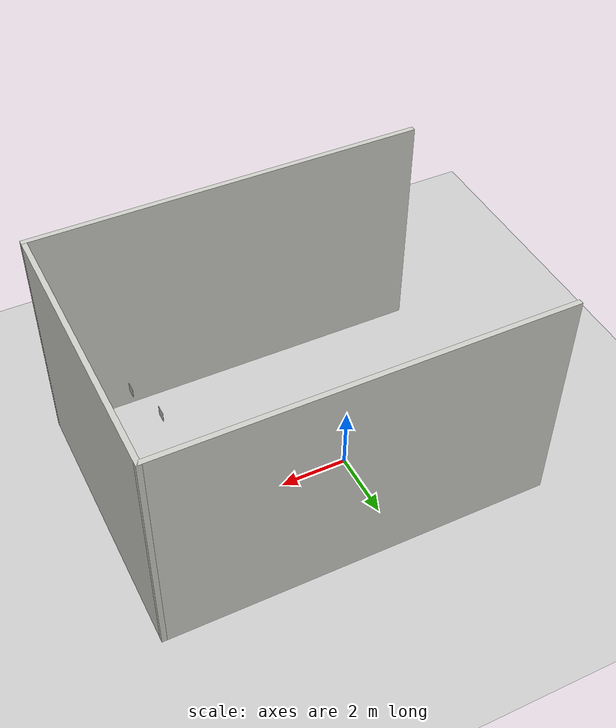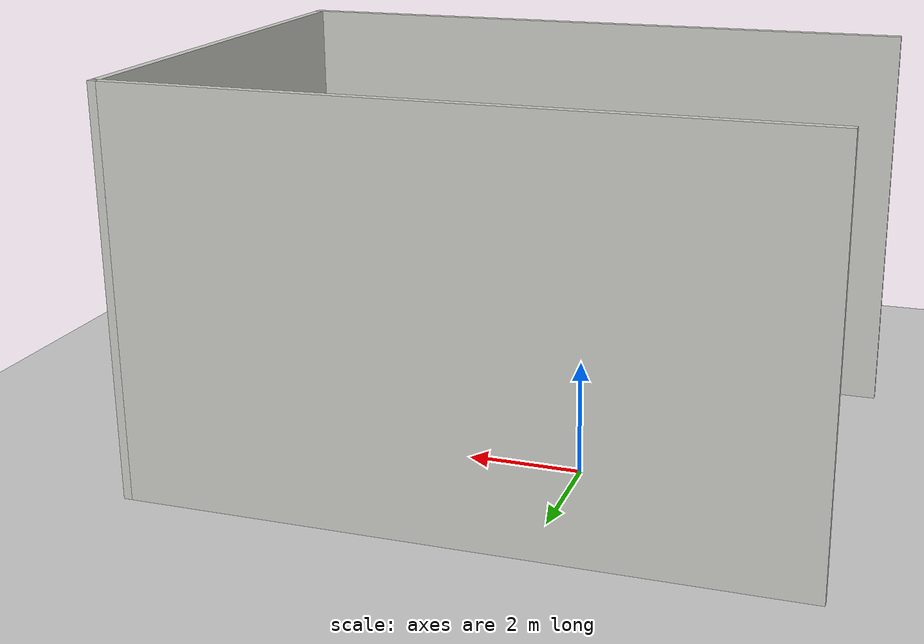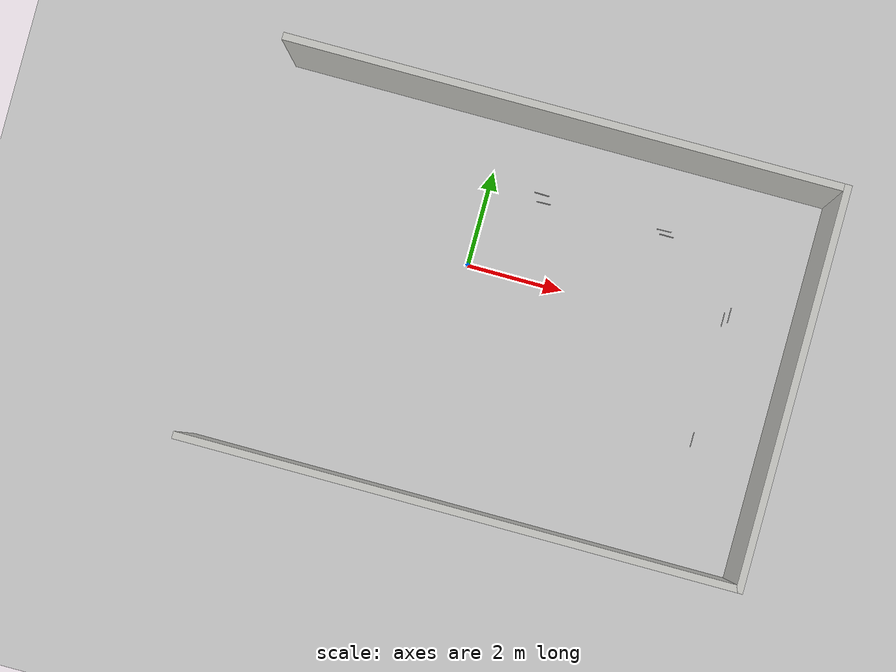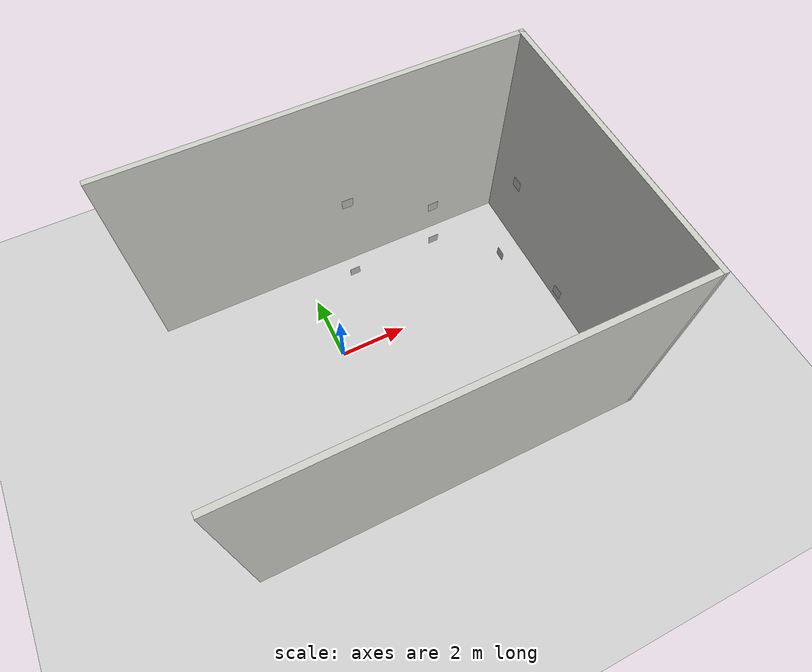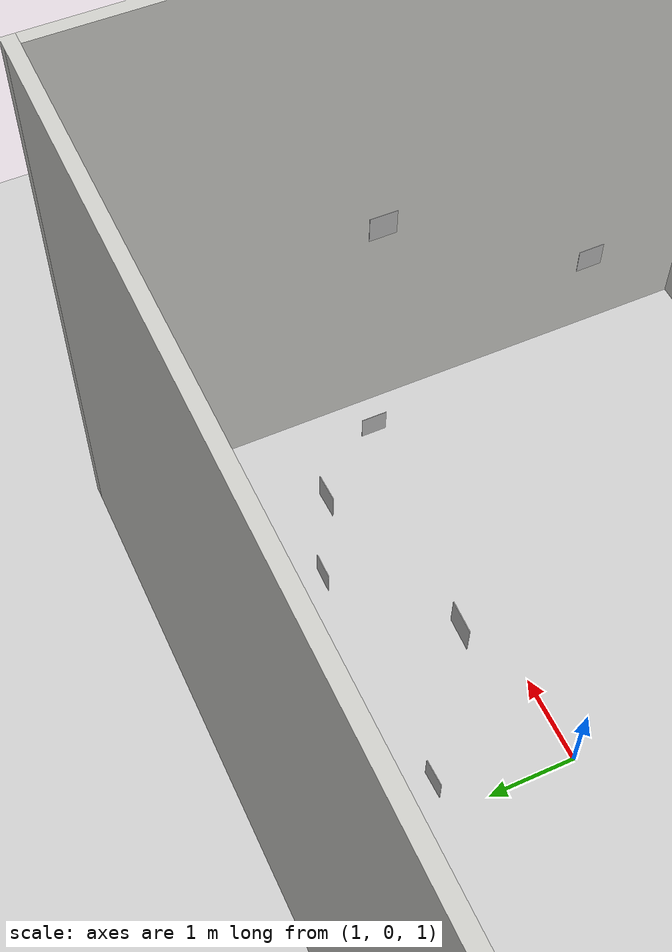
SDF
<sdf version="1.6">
 <world name="default">
  <scene><ambient>0.5 0.5 0.5 1</ambient><background>0.5 0.5 0.5 1</background><shadows>0</shadows></scene>
  <physics name="default_physics" default="0" type="ode">
   <ode>
    <solver>
     <type>quick</type>
     <iters>10</iters>
     <sor>1.3</sor>
     <use_dynamic_moi_rescaling>0</use_dynamic_moi_rescaling>
    </solver>
    <constraints>
     <cfm>0</cfm>
     <erp>0.2</erp>
     <contact_max_correcting_vel>100</contact_max_correcting_vel>
     <contact_surface_layer>0.001</contact_surface_layer>
    </constraints>
   </ode>
   <real_time_update_rate>1000</real_time_update_rate>
   <max_step_size>0.001</max_step_size>
   <real_time_factor>1</real_time_factor>
  </physics>
  <model name="ground_plane">
   <static>1</static>
   <link name="link">
    <collision name="collision">
     <geometry><plane><normal>0 0 1</normal><size>100 100</size></plane></geometry>
     <surface>
      <contact><collide_bitmask>65535</collide_bitmask></contact>
      <friction><ode><mu>100</mu><mu2>50</mu2></ode></friction>
     </surface>
    </collision>
    <visual name="visual">
     <cast_shadows>0</cast_shadows>
     <geometry><plane><normal>0 0 1</normal><size>100 100</size></plane></geometry>
     <material>
      <script><uri>file://media/materials/scripts/gazebo.material</uri><name>Gazebo/Grey</name></script>
     </material>
    </visual>
   </link>
  </model>
  <light name="my_light" type="directional">
   <pose>0 0 30 0 -0 0</pose>
   <diffuse>0.5 0.5 0.5 1</diffuse>
   <specular>0.1 0.1 0.1 1</specular>
   <attenuation><range>200</range></attenuation>
   <direction>0 0 -1</direction>
   <cast_shadows>0</cast_shadows>
  </light>
  <gravity>0 0 -9.8</gravity>
  <magnetic_field>6e-06 2.3e-05 -4.2e-05</magnetic_field>
  <atmosphere type="adiabatic"/>
  <spherical_coordinates>
   <surface_model>EARTH_WGS84</surface_model>
   <latitude_deg>0</latitude_deg>
   <longitude_deg>0</longitude_deg>
   <elevation>0</elevation>
   <heading_deg>0</heading_deg>
  </spherical_coordinates>
  <model name="wall_Final">
   <pose>1.18705 -0.90001 0 0 -0 0</pose>
   <link name="Wall_34">
    <collision name="Wall_34_Collision">
     <geometry><box><size>11.526 0.15 7</size></box></geometry>
     <pose>0 0 3.5 0 -0 0</pose>
    </collision>
    <visual name="Wall_34_Visual">
     <pose>0 0 3.5 0 -0 0</pose>
     <geometry><box><size>11.526 0.15 7</size></box></geometry>
     <material>
      <script><uri>file://media/materials/scripts/gazebo.material</uri><name>Gazebo/CeilingTiled</name></script>
      <ambient>0.760784 0.662745 0.627451 1</ambient>
     </material>
     <meta><layer>0</layer></meta>
    </visual>
    <pose>0 -4.03691 0 0 -0 3.13931</pose>
   </link>
   <link name="Wall_40">
    <collision name="Wall_40_Collision">
     <geometry><box><size>8.25 0.15 7</size></box></geometry>
     <pose>0 0 3.5 0 -0 0</pose>
    </collision>
    <visual name="Wall_40_Visual">
     <pose>0 0 3.5 0 -0 0</pose>
     <geometry><box><size>8.25 0.15 7</size></box></geometry>
     <material>
      <script><uri>file://media/materials/scripts/gazebo.material</uri><name>Gazebo/CeilingTiled</name></script>
      <ambient>0.760784 0.662745 0.627451 1</ambient>
     </material>
     <meta><layer>0</layer></meta>
    </visual>
    <pose>5.688 8.5e-05 0 0 -0 1.5708</pose>
   </link>
   <link name="Wall_42">
    <collision name="Wall_42_Collision">
     <geometry><box><size>11.5 0.15 7</size></box></geometry>
     <pose>0 0 3.5 0 -0 0</pose>
    </collision>
    <visual name="Wall_42_Visual">
     <pose>0 0 3.5 0 -0 0</pose>
     <geometry><box><size>11.5 0.15 7</size></box></geometry>
     <material>
      <script><uri>file://media/materials/scripts/gazebo.material</uri><name>Gazebo/CeilingTiled</name></script>
      <ambient>0.760784 0.662745 0.627451 1</ambient>
     </material>
     <meta><layer>0</layer></meta>
    </visual>
    <pose>0.013 4.05009 0 0 -0 3.14159</pose>
   </link>
   <static>1</static>
  </model>
  <model name="caja1">
   <static>1</static>
   <link name="link">
    <visual name="visual">
     <geometry><mesh><uri>model://caja1/meshes/caja1.dae</uri><scale>0.6 0.6 0.6</scale></mesh></geometry>
    </visual>
   </link>
   <pose>1.18807 1.58896 1.78292 -3.14049 0 1.60024</pose>
  </model>
  <model name="caja2">
   <static>1</static>
   <link name="link">
    <visual name="visual">
     <geometry><mesh><uri>model://caja2/meshes/caja2.dae</uri><scale>0.6 0.6 0.6</scale></mesh></geometry>
    </visual>
   </link>
   <pose>3.79534 1.59731 1.49617 0.018459 -0.00127 -1.57572</pose>
  </model>
  <model name="caja3">
   <static>1</static>
   <link name="link">
    <visual name="visual">
     <geometry><mesh><uri>model://caja3/meshes/caja3.dae</uri><scale>0.6 0.6 0.6</scale></mesh></geometry>
    </visual>
   </link>
   <pose>5.35351 0.238217 1.77734 -3.13761 0 0</pose>
  </model>
  <model name="caja4">
   <static>1</static>
   <link name="link">
    <visual name="visual">
     <geometry><mesh><uri>model://caja4/meshes/caja4.dae</uri><scale>0.6 0.6 0.6</scale></mesh></geometry>
    </visual>
   </link>
   <pose>5.33363 -2.32296 3.42251 3.13362 -0 0</pose>
  </model>
  <model name="caja5">
   <static>1</static>
   <link name="link">
    <visual name="visual">
     <geometry><mesh><uri>model://caja5/meshes/caja5.dae</uri><scale>0.6 0.6 0.6</scale></mesh></geometry>
    </visual>
   </link>
   <pose>3.68869 1.60348 3.43261 3.13286 -0.012578 1.59795</pose>
  </model>
  <model name="caja6">
   <static>1</static>
   <link name="link">
    <visual name="visual">
     <geometry><mesh><uri>model://caja6/meshes/caja6.dae</uri><scale>0.6 0.6 0.6</scale></mesh></geometry>
    </visual>
   </link>
   <pose>1.12685 1.58656 5.03482 3.1332 -0 1.54556</pose>
  </model>
  <model name="caja7">
   <static>1</static>
   <link name="link">
    <visual name="visual">
     <geometry><mesh><uri>model://caja7/meshes/caja7.dae</uri><scale>0.6 0.6 0.6</scale></mesh></geometry>
    </visual>
   </link>
   <pose>5.35485 0.232094 5.03146 -3.13537 0 0</pose>
  </model>
 </world>
</sdf>
